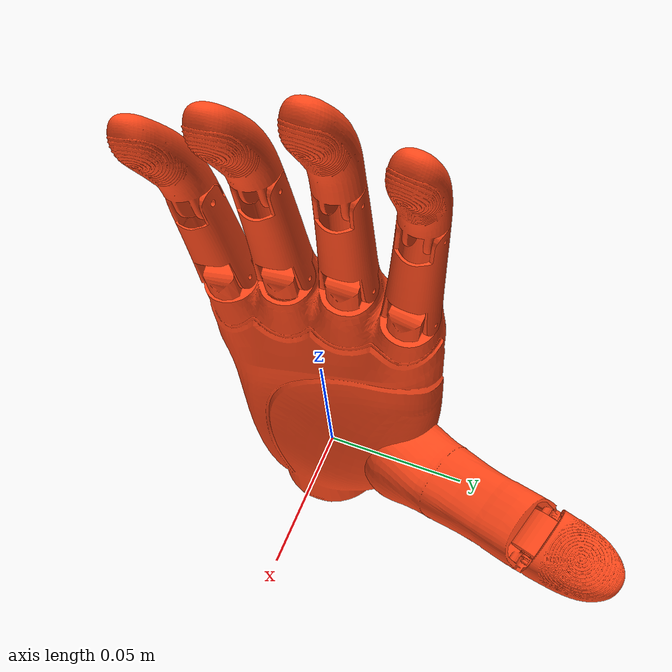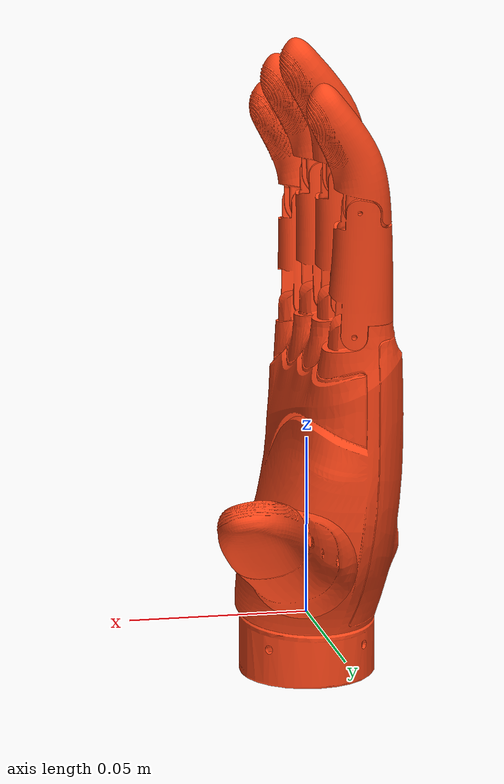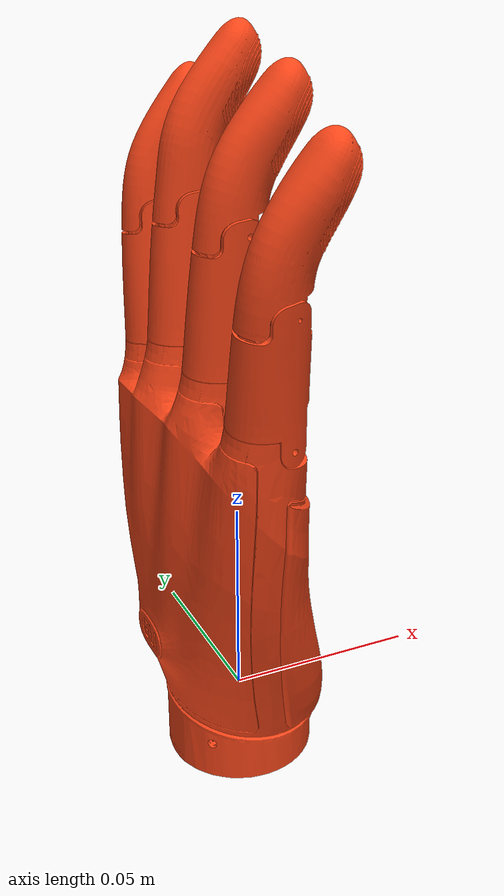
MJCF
<mujoco model="glite1-right">
  <default>
    <default class="robot">
      <default class="motor">
        <joint />
        <motor />
      </default>
      <default class="visual">
        <geom material="visualgeom" contype="0" conaffinity="0" group="2" />
      </default>
      <default class="collision">
        <geom material="collision_material" condim="3" contype="0" conaffinity="1" priority="1" group="1" solref="0.005 1" solimp="0.99 0.999 1e-05" friction="1 0.01 0.01" />
      </default>
    </default>
  </default>

  <compiler angle="radian" />

  <asset>
    <material name="" rgba="0 0 0 1" />
    <material name="default_material" rgba="0.7 0.7 0.7 1" />
    <material name="collision_material" rgba="1.0 0.28 0.1 0.9" />
    <mesh name="base_link.STL" file="ghand_lite1_system/meshes/hands/visual/right/base_link.STL" />
    <mesh name="THUMB_TMC_AA_link.STL" file="ghand_lite1_system/meshes/hands/visual/right/THUMB_TMC_AA_link.STL" />
    <mesh name="THUMB_TMC_FE_Link.STL" file="ghand_lite1_system/meshes/hands/visual/right/THUMB_TMC_FE_Link.STL" />
    <mesh name="THUMB_MCP_Link.STL" file="ghand_lite1_system/meshes/hands/visual/right/THUMB_MCP_Link.STL" />
    <mesh name="FF_MCP_Link.STL" file="ghand_lite1_system/meshes/hands/visual/right/FF_MCP_Link.STL" />
    <mesh name="FF_IP_Link.STL" file="ghand_lite1_system/meshes/hands/visual/right/FF_IP_Link.STL" />
    <mesh name="MF_MCP_Link.STL" file="ghand_lite1_system/meshes/hands/visual/right/MF_MCP_Link.STL" />
    <mesh name="MF_IP_Link.STL" file="ghand_lite1_system/meshes/hands/visual/right/MF_IP_Link.STL" />
    <mesh name="RF_MCP_Link.STL" file="ghand_lite1_system/meshes/hands/visual/right/RF_MCP_Link.STL" />
    <mesh name="RF_IP_Link.STL" file="ghand_lite1_system/meshes/hands/visual/right/RF_IP_Link.STL" />
    <mesh name="LF_MCP_Link.STL" file="ghand_lite1_system/meshes/hands/visual/right/LF_MCP_Link.STL" />
    <mesh name="LF_IP_Link.STL" file="ghand_lite1_system/meshes/hands/visual/right/LF_IP_Link.STL" />
  </asset>

  <worldbody>
    <body name="base_link" pos="0.00000000 0.00000000 0.00000000" quat="1 0 0 0" childclass="robot">
      <freejoint name="floating_base" />
      <geom name="base_link_collision" pos="0 0 0" quat="1.0 0.0 0.0 0.0" type="mesh" mesh="base_link.STL" class="collision" />
      <geom name="base_link_visual" pos="0 0 0" quat="1.0 0.0 0.0 0.0" material="" type="mesh" mesh="base_link.STL" class="visual" />
      <body name="THUMB_TMC_AA_link" pos="0.0027419 0.015355 0.0407" quat="-2.962197022002295e-06 0.8064338741344774 0.5913242821286517 -2.1720553708623664e-06">
        <joint name="THUMB_TMC_AA" type="hinge" ref="0.0" class="motor" range="0 1.57" axis="0 0 1" />
        <inertial pos="0.011325 0.00010996 0.014524" quat="1.0 0.0 0.0 0.0" mass="0.0012466" diaginertia="5.1293e-08 2.1987e-08 4.2146e-08" />
        <geom name="THUMB_TMC_AA_link_collision" pos="0 0 0" quat="1.0 0.0 0.0 0.0" type="mesh" mesh="THUMB_TMC_AA_link.STL" class="collision" />
        <geom name="THUMB_TMC_AA_link_visual" pos="0 0 0" quat="1.0 0.0 0.0 0.0" material="" type="mesh" mesh="THUMB_TMC_AA_link.STL" class="visual" />
        <body name="THUMB_TMC_FE_Link" pos="0.0175 -0.00014467 0.017602" quat="0.7650908979023362 -0.6195336101905101 0.11047315638170072 0.1364173944567722">
          <joint name="THUMB_TMC_FE" type="hinge" ref="0.0" class="motor" range="0 0.8727" axis="0 0 1" />
          <inertial pos="0.0096915 -0.00049003 -3.0884E-05" quat="1.0 0.0 0.0 0.0" mass="0.021953" diaginertia="2.0396e-06 6.919e-06 6.7482e-06" />
          <geom name="THUMB_TMC_FE_Link_collision" pos="0 0 0" quat="1.0 0.0 0.0 0.0" type="mesh" mesh="THUMB_TMC_FE_Link.STL" class="collision" />
          <geom name="THUMB_TMC_FE_Link_visual" pos="0 0 0" quat="1.0 0.0 0.0 0.0" material="" type="mesh" mesh="THUMB_TMC_FE_Link.STL" class="visual" />
          <body name="THUMB_MCP_Link" pos="0.0555 0 0" quat="1.0 0.0 0.0 0.0">
            <joint name="THUMB_MCP" type="hinge" ref="0.0" class="motor" range="0 0.8727" axis="0 0 1" />
            <inertial pos="0.012263 0.002595 -3.2073E-07" quat="1.0 0.0 0.0 0.0" mass="0.0052709" diaginertia="2.2468e-07 3.7918e-07 3.1936e-07" />
            <geom name="THUMB_MCP_Link_collision" pos="0 0 0" quat="1.0 0.0 0.0 0.0" type="mesh" mesh="THUMB_MCP_Link.STL" class="collision" />
            <geom name="THUMB_MCP_Link_visual" pos="0 0 0" quat="1.0 0.0 0.0 0.0" material="" type="mesh" mesh="THUMB_MCP_Link.STL" class="visual" />
          </body>
        </body>
      </body>
      <body name="FF_MCP_Link" pos="-0.0061775 0.027065 0.08605" quat="-0.4534802669343721 0.5262850411223415 0.5018693069563611 0.515273618310823">
        <joint name="FF_MCP" type="hinge" ref="0.0" class="motor" range="0 1.57" axis="0 0 1" />
        <inertial pos="0.016994 -0.0020693 2.7252E-06" quat="1.0 0.0 0.0 0.0" mass="0.0048788" diaginertia="2.3552e-07 6.8665e-07 6.4138e-07" />
        <geom name="FF_MCP_Link_collision" pos="0 0 0" quat="1.0 0.0 0.0 0.0" type="mesh" mesh="FF_MCP_Link.STL" class="collision" />
        <geom name="FF_MCP_Link_visual" pos="0 0 0" quat="1.0 0.0 0.0 0.0" material="" type="mesh" mesh="FF_MCP_Link.STL" class="visual" />
        <body name="FF_IP_Link" pos="0.0338 0 0" quat="1.0 0.0 0.0 0.0">
          <joint name="FF_IP" type="hinge" ref="0.0" class="motor" range="0 1.3962" axis="0 0 1" />
          <inertial pos="0.014502 0.0028707 -1.591E-08" quat="1.0 0.0 0.0 0.0" mass="0.0042877" diaginertia="1.3646e-07 3.5763e-07 4.0687e-07" />
          <geom name="FF_IP_Link_collision" pos="0 0 0" quat="1.0 0.0 0.0 0.0" type="mesh" mesh="FF_IP_Link.STL" class="collision" />
          <geom name="FF_IP_Link_visual" pos="0 0 0" quat="1.0 0.0 0.0 0.0" material="" type="mesh" mesh="FF_IP_Link.STL" class="visual" />
        </body>
      </body>
      <body name="MF_MCP_Link" pos="-0.0069842 0.0083554 0.090606" quat="0.5043893862064559 -0.5043203969998138 -0.4956455067776179 -0.49556817478867954">
        <joint name="MF_MCP" type="hinge" ref="0.0" class="motor" range="0 1.57" axis="0 0 1" />
        <inertial pos="0.016995 -0.0020692 2.8771E-06" quat="1.0 0.0 0.0 0.0" mass="0.0048788" diaginertia="2.3552e-07 6.8668e-07 6.414e-07" />
        <geom name="MF_MCP_Link_collision" pos="0 0 0" quat="1.0 0.0 0.0 0.0" type="mesh" mesh="MF_MCP_Link.STL" class="collision" />
        <geom name="MF_MCP_Link_visual" pos="0 0 0" quat="1.0 0.0 0.0 0.0" material="" type="mesh" mesh="MF_MCP_Link.STL" class="visual" />
        <body name="MF_IP_Link" pos="0.0338 0 0" quat="1.0 0.0 0.0 0.0">
          <joint name="MF_IP" type="hinge" ref="0.0" class="motor" range="0 1.3962" axis="0 0 1" />
          <inertial pos="0.016937 0.0024934 3.8363E-06" quat="1.0 0.0 0.0 0.0" mass="0.0048125" diaginertia="1.5428e-07 5.2033e-07 5.7391e-07" />
          <geom name="MF_IP_Link_collision" pos="0 0 0" quat="1.0 0.0 0.0 0.0" type="mesh" mesh="MF_IP_Link.STL" class="collision" />
          <geom name="MF_IP_Link_visual" pos="0 0 0" quat="1.0 0.0 0.0 0.0" material="" type="mesh" mesh="MF_IP_Link.STL" class="visual" />
        </body>
      </body>
      <body name="RF_MCP_Link" pos="-0.0058769 -0.010661 0.088033" quat="0.5340247950815503 -0.4728249546414298 -0.49152441336224795 -0.4996577144159146">
        <joint name="RF_MCP" type="hinge" ref="0.0" class="motor" range="0 1.57" axis="0 0 1" />
        <inertial pos="0.016995 -0.0020692 3.0024E-06" quat="1.0 0.0 0.0 0.0" mass="0.0048788" diaginertia="2.3552e-07 6.8667e-07 6.414e-07" />
        <geom name="RF_MCP_Link_collision" pos="0 0 0" quat="1.0 0.0 0.0 0.0" type="mesh" mesh="RF_MCP_Link.STL" class="collision" />
        <geom name="RF_MCP_Link_visual" pos="0 0 0" quat="1.0 0.0 0.0 0.0" material="" type="mesh" mesh="RF_MCP_Link.STL" class="visual" />
        <body name="RF_IP_Link" pos="0.0338 0 0" quat="1.0 0.0 0.0 0.0">
          <joint name="RF_IP" type="hinge" ref="0.0" class="motor" range="0 1.3962" axis="0 0 1" />
          <inertial pos="0.014502 0.0028707 6.4726E-09" quat="1.0 0.0 0.0 0.0" mass="0.0042877" diaginertia="1.3646e-07 3.5763e-07 4.0687e-07" />
          <geom name="RF_IP_Link_collision" pos="0 0 0" quat="1.0 0.0 0.0 0.0" type="mesh" mesh="RF_IP_Link.STL" class="collision" />
          <geom name="RF_IP_Link_visual" pos="0 0 0" quat="1.0 0.0 0.0 0.0" material="" type="mesh" mesh="RF_IP_Link.STL" class="visual" />
        </body>
      </body>
      <body name="LF_MCP_Link" pos="-0.0038799 -0.029218 0.08175" quat="0.5491950044762153 -0.43079066248024067 -0.48919473052197066 -0.5229653600457123">
        <joint name="LF_MCP" type="hinge" ref="0.0" class="motor" range="0 1.57" axis="0 0 1" />
        <inertial pos="0.014735 -0.0022226 -1.2998E-05" quat="1.0 0.0 0.0 0.0" mass="0.0045558" diaginertia="2.1792e-07 4.9298e-07 4.4423e-07" />
        <geom name="LF_MCP_Link_collision" pos="0 0 0" quat="1.0 0.0 0.0 0.0" type="mesh" mesh="LF_MCP_Link.STL" class="collision" />
        <geom name="LF_MCP_Link_visual" pos="0 0 0" quat="1.0 0.0 0.0 0.0" material="" type="mesh" mesh="LF_MCP_Link.STL" class="visual" />
        <body name="LF_IP_Link" pos="0.0285 0 0" quat="1.0 0.0 0.0 0.0">
          <joint name="LF_IP" type="hinge" ref="0.0" class="motor" range="0 1.3962" axis="0 0 1" />
          <inertial pos="0.014286 0.0018816 -2.4038E-08" quat="1.0 0.0 0.0 0.0" mass="0.0041612" diaginertia="1.3506e-07 3.7648e-07 4.2284e-07" />
          <geom name="LF_IP_Link_collision" pos="0 0 0" quat="1.0 0.0 0.0 0.0" type="mesh" mesh="LF_IP_Link.STL" class="collision" />
          <geom name="LF_IP_Link_visual" pos="0 0 0" quat="1.0 0.0 0.0 0.0" material="" type="mesh" mesh="LF_IP_Link.STL" class="visual" />
        </body>
      </body>
      <site name="base_link_site" pos="0 0 0" quat="1 0 0 0" />
      <camera name="front_camera" mode="track" fovy="90.0" quat="4.329637285359678e-17 4.329637285359677e-17 0.7071067811865475 0.7071067811865476" pos="0.0 2.0 0.5" />
      <camera name="side_camera" mode="track" fovy="90.0" quat="-0.5 -0.4999999999999999 0.5 0.5000000000000001" pos="-2.0 0.0 0.5" />
    </body>
  </worldbody>

  <actuator>
    <motor name="THUMB_TMC_AA_ctrl" joint="THUMB_TMC_AA" class="motor" />
    <motor name="THUMB_TMC_FE_ctrl" joint="THUMB_TMC_FE" class="motor" />
    <motor name="THUMB_MCP_ctrl" joint="THUMB_MCP" class="motor" />
    <motor name="FF_MCP_ctrl" joint="FF_MCP" class="motor" />
    <motor name="FF_IP_ctrl" joint="FF_IP" class="motor" />
    <motor name="MF_MCP_ctrl" joint="MF_MCP" class="motor" />
    <motor name="MF_IP_ctrl" joint="MF_IP" class="motor" />
    <motor name="RF_MCP_ctrl" joint="RF_MCP" class="motor" />
    <motor name="RF_IP_ctrl" joint="RF_IP" class="motor" />
    <motor name="LF_MCP_ctrl" joint="LF_MCP" class="motor" />
    <motor name="LF_IP_ctrl" joint="LF_IP" class="motor" />
  </actuator>

  <contact>
    <exclude body1="base_link" body2="THUMB_TMC_AA_link" />
    <exclude body1="THUMB_TMC_AA_link" body2="THUMB_TMC_FE_Link" />
    <exclude body1="THUMB_TMC_FE_Link" body2="THUMB_MCP_Link" />
    <exclude body1="base_link" body2="FF_MCP_Link" />
    <exclude body1="FF_MCP_Link" body2="FF_IP_Link" />
    <exclude body1="base_link" body2="MF_MCP_Link" />
    <exclude body1="MF_MCP_Link" body2="MF_IP_Link" />
    <exclude body1="base_link" body2="RF_MCP_Link" />
    <exclude body1="RF_MCP_Link" body2="RF_IP_Link" />
    <exclude body1="base_link" body2="LF_MCP_Link" />
    <exclude body1="LF_MCP_Link" body2="LF_IP_Link" />
  </contact>

  <sensor>
    <framepos name="base_link_site_pos" objtype="site" objname="base_link_site" />
    <framequat name="base_link_site_quat" objtype="site" objname="base_link_site" />
    <framelinvel name="base_link_site_linvel" objtype="site" objname="base_link_site" />
    <frameangvel name="base_link_site_angvel" objtype="site" objname="base_link_site" />
    <velocimeter name="base_link_site_vel" site="base_link_site" />
  </sensor>
</mujoco>
